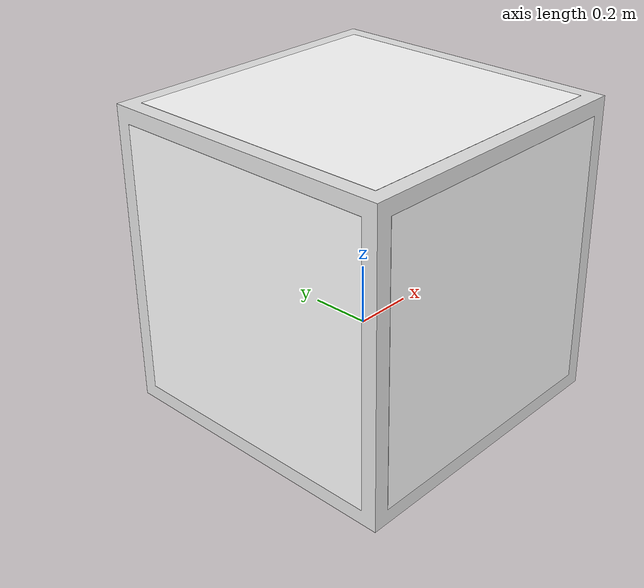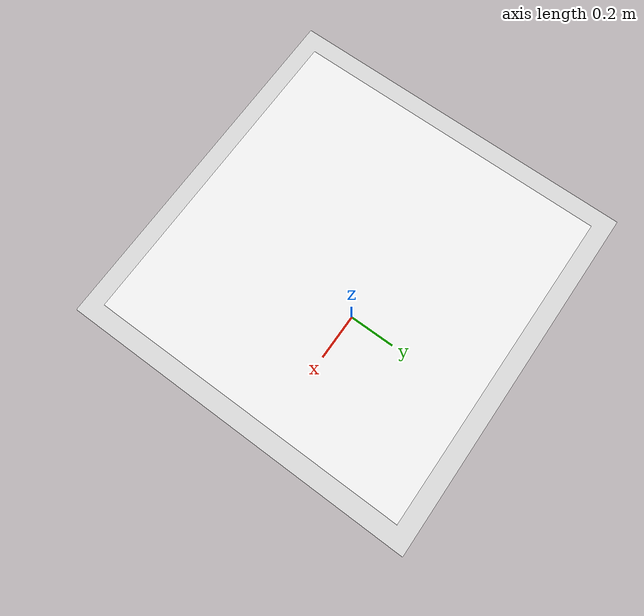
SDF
<?xml version="1.0"?>
<sdf version="1.8">
  <model name="moving_aruco_box">
    <static>false</static>
    <link name="link">
      <pose>0 0 0.25 0 0 0</pose>
      <gravity>false</gravity>
      <kinematic>true</kinematic>
      <inertial>
        <mass>1.0</mass>
        <inertia>
          <ixx>0.0416667</ixx>
          <ixy>0.0</ixy>
          <ixz>0.0</ixz>
          <iyy>0.0416667</iyy>
          <iyz>0.0</iyz>
          <izz>0.0416667</izz>
        </inertia>
      </inertial>
      <collision name="collision">
        <geometry>
          <box><size>1.0 1.0 1.0</size></box>
        </geometry>
      </collision>

      <visual name="body">
        <geometry>
          <box><size>1.0 1.0 1.0</size></box>
        </geometry>
        <material>
          <ambient>0.9 0.9 0.9 1</ambient>
          <diffuse>0.9 0.9 0.9 1</diffuse>
        </material>
      </visual>

      <visual name="marker_face_pos_x">
        <pose>0.501 0 0 0 0 0</pose>
        <geometry>
          <plane>
            <normal>1 0 0</normal>
            <size>0.90 0.90</size>
          </plane>
        </geometry>
        <cast_shadows>false</cast_shadows>
        <double_sided>true</double_sided>
        <material>
          <ambient>1 1 1 1</ambient>
          <diffuse>1 1 1 1</diffuse>
          <pbr>
            <metal>
              <albedo_map>materials/textures/aruco_4x4_0.png</albedo_map>
              <roughness>0.8</roughness>
              <metalness>0.0</metalness>
            </metal>
          </pbr>
        </material>
      </visual>

      <visual name="marker_face_neg_x">
        <pose>-0.501 0 0 0 0 0</pose>
        <geometry>
          <plane>
            <normal>-1 0 0</normal>
            <size>0.90 0.90</size>
          </plane>
        </geometry>
        <cast_shadows>false</cast_shadows>
        <double_sided>true</double_sided>
        <material>
          <ambient>1 1 1 1</ambient>
          <diffuse>1 1 1 1</diffuse>
          <pbr>
            <metal>
              <albedo_map>materials/textures/aruco_4x4_0.png</albedo_map>
              <roughness>0.8</roughness>
              <metalness>0.0</metalness>
            </metal>
          </pbr>
        </material>
      </visual>

      <visual name="marker_face_pos_y">
        <pose>0 0.501 0 0 0 0</pose>
        <geometry>
          <plane>
            <normal>0 1 0</normal>
            <size>0.90 0.90</size>
          </plane>
        </geometry>
        <cast_shadows>false</cast_shadows>
        <double_sided>true</double_sided>
        <material>
          <ambient>1 1 1 1</ambient>
          <diffuse>1 1 1 1</diffuse>
          <pbr>
            <metal>
              <albedo_map>materials/textures/aruco_4x4_0.png</albedo_map>
              <roughness>0.8</roughness>
              <metalness>0.0</metalness>
            </metal>
          </pbr>
        </material>
      </visual>

      <visual name="marker_face_neg_y">
        <pose>0 -0.501 0 0 0 0</pose>
        <geometry>
          <plane>
            <normal>0 -1 0</normal>
            <size>0.90 0.90</size>
          </plane>
        </geometry>
        <cast_shadows>false</cast_shadows>
        <double_sided>true</double_sided>
        <material>
          <ambient>1 1 1 1</ambient>
          <diffuse>1 1 1 1</diffuse>
          <pbr>
            <metal>
              <albedo_map>materials/textures/aruco_4x4_0.png</albedo_map>
              <roughness>0.8</roughness>
              <metalness>0.0</metalness>
            </metal>
          </pbr>
        </material>
      </visual>

      <visual name="marker_face_pos_z">
        <pose>0 0 0.501 0 0 0</pose>
        <geometry>
          <plane>
            <normal>0 0 1</normal>
            <size>0.90 0.90</size>
          </plane>
        </geometry>
        <cast_shadows>false</cast_shadows>
        <double_sided>true</double_sided>
        <material>
          <ambient>1 1 1 1</ambient>
          <diffuse>1 1 1 1</diffuse>
          <pbr>
            <metal>
              <albedo_map>materials/textures/aruco_4x4_0.png</albedo_map>
              <roughness>0.8</roughness>
              <metalness>0.0</metalness>
            </metal>
          </pbr>
        </material>
      </visual>

      <visual name="marker_face_neg_z">
        <pose>0 0 -0.501 0 0 0</pose>
        <geometry>
          <plane>
            <normal>0 0 -1</normal>
            <size>0.90 0.90</size>
          </plane>
        </geometry>
        <cast_shadows>false</cast_shadows>
        <double_sided>true</double_sided>
        <material>
          <ambient>1 1 1 1</ambient>
          <diffuse>1 1 1 1</diffuse>
          <pbr>
            <metal>
              <albedo_map>materials/textures/aruco_4x4_0.png</albedo_map>
              <roughness>0.8</roughness>
              <metalness>0.0</metalness>
            </metal>
          </pbr>
        </material>
      </visual>
    </link>
  </model>
</sdf>
